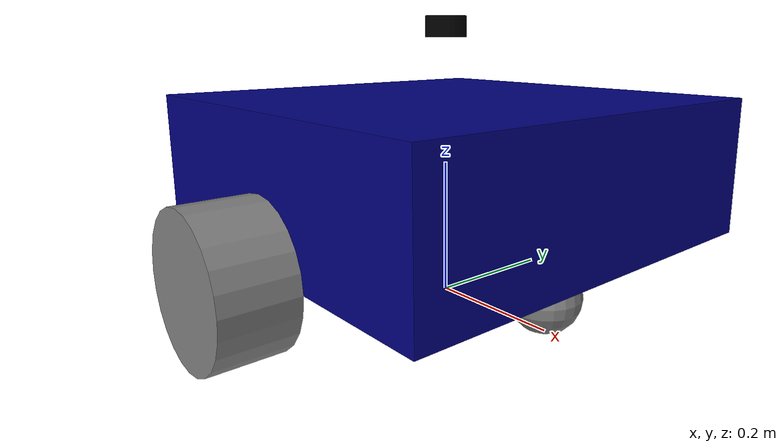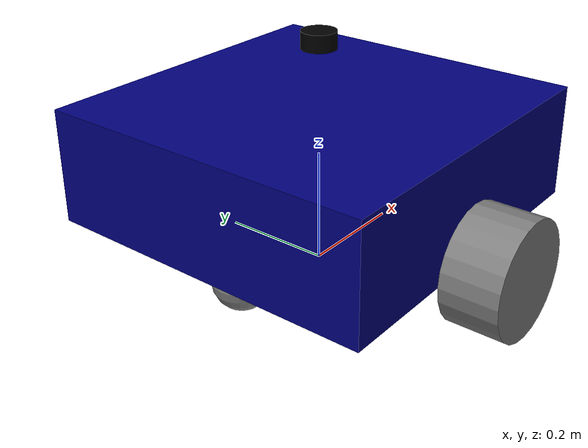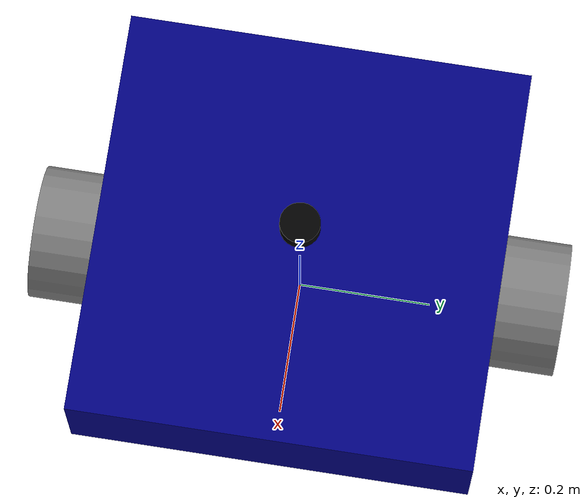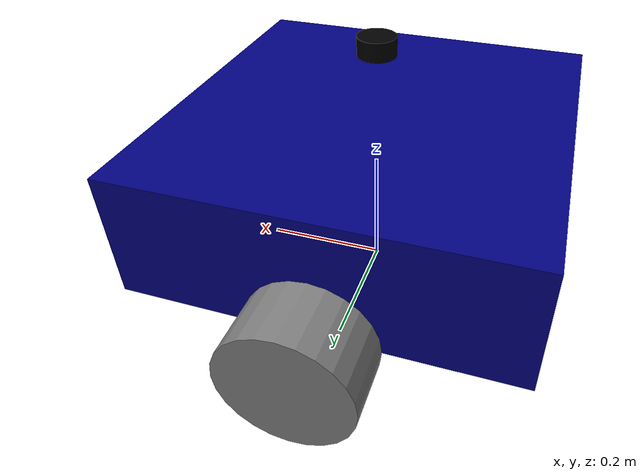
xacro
<?xml version="1.0"?>
<robot name="my_robot" xmlns:xacro="http://www.ros.org/wiki/xacro">

    <xacro:arg name="robot_name" default="robot"/>
    <xacro:arg name="tf_prefix" default="$(arg robot_name)"/>

    <xacro:property name="tf_prefix" value="$(arg tf_prefix)" />
    <xacro:property name="robot_name" value="$(arg robot_name)" />

    <xacro:include filename="common_properties.xacro" />
    <xacro:include filename="mobile_base.xacro" />
    <xacro:include filename="mobile_base_gazebo.xacro" />
    <xacro:include filename="lidar_sensor.xacro"/>
    <xacro:include filename="imu_sensor.xacro"/>

</robot>

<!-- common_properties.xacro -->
<robot xmlns:xacro="http://www.ros.org/wiki/xacro">

    <material name="blue">
        <color rgba="0 0 0.5 1" />
    </material>

    <material name="grey">
        <color rgba="0.5 0.5 0.5 1" />
    </material>

    <material name="black">
        <color rgba="0.0 0.0 0.0 1" />
    </material>

     <!-- Common robot properties -->
    <xacro:property name="prefix" value="${tf_prefix}/" />
    <xacro:property name="base_length" value="0.6" />
    <xacro:property name="base_width" value="0.6" />
    <xacro:property name="base_height" value="0.2" />
    <xacro:property name="wheel_radius" value="0.1" />
    <xacro:property name="wheel_length" value="0.1" />

    <!-- Sensor scaling factors -->
    <xacro:property name="sensor_scale" value="0.3" /> <!-- 1/8th of wheel radius -->

    <xacro:macro name="box_inertia" params="m x y z o_xyz o_rpy">
        <inertial>
            <mass value="${m}" />
            <origin xyz="${o_xyz}" rpy="${o_rpy}" />
            <inertia ixx="${(m/12) * (y*y + z*z)}" ixy="0" ixz="0"
                     iyy="${(m/12) * (x*x + z*z)}" iyz="0"
                     izz="${(m/12) * (x*x + y*y)}" />
        </inertial>
    </xacro:macro>

    <xacro:macro name="cylinder_inertia" params="m r l o_xyz o_rpy">
        <inertial>
            <mass value="${m}" />
            <origin xyz="${o_xyz}" rpy="${o_rpy}" />
            <inertia ixx="${(m/12) * (3*r*r + l*l)}" ixy="0" ixz="0"
                     iyy="${(m/12) * (3*r*r + l*l)}" iyz="0"
                     izz="${(m/2) * (r*r)}" />
        </inertial>
    </xacro:macro>

    <xacro:macro name="sphere_inertia" params="m r o_xyz o_rpy">
        <inertial>
            <mass value="${m}" />
            <origin xyz="${o_xyz}" rpy="${o_rpy}" />
            <inertia ixx="${(2/5) * m * r * r}" ixy="0" ixz="0"
                     iyy="${(2/5) * m * r * r}" iyz="0"
                     izz="${(2/5) * m * r * r}" />
        </inertial>
    </xacro:macro>

</robot>

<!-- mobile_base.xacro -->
<robot xmlns:xacro="http://www.ros.org/wiki/xacro">

    <link name="${prefix}base_footprint" />

    <link name="${prefix}base_link">
        <visual>
            <geometry>
                <box size="${base_length} ${base_width} ${base_height}" />
            </geometry>
            <origin xyz="0 0 ${base_height / 2.0}" rpy="0 0 0" />
            <material name="blue" />
        </visual>
        <collision>
            <geometry>
                <box size="${base_length} ${base_width} ${base_height}" />
            </geometry>
            <origin xyz="0 0 ${base_height / 2.0}" rpy="0 0 0" />
        </collision>
        <xacro:box_inertia m="100.0" x="${base_length}" y="${base_width}" z="${base_height}"
                          o_xyz="0 0 ${base_height / 2.0}" o_rpy="0 0 0" />
    </link>

    <xacro:macro name="wheel_link" params="prefix suffix">
        <link name="${prefix}${suffix}_wheel_link">
            <visual>
                <geometry>
                    <cylinder radius="${wheel_radius}" length="${wheel_length}" />
                </geometry>
                <origin xyz="0 0 0" rpy="${pi / 2.0} 0 0" />
                <material name="grey" />
            </visual>
            <collision>
                <geometry>
                    <sphere radius="${wheel_radius}" />
                </geometry>
                <surface>
      		<friction>
        		<ode>
          		<mu>10.0</mu>             <!-- Static friction -->
          		<mu2>8.0</mu2>           <!-- Dynamic friction -->
        		</ode>
      		</friction>
    		</surface>
                <origin xyz="0 0 0" rpy="0 0 0" />
            </collision>
            <xacro:cylinder_inertia m="20.0" r="${wheel_radius}" l="${wheel_length}"
                                   o_xyz="0 0 0" o_rpy="${pi / 2.0} 0 0" />
        </link>
    </xacro:macro>

    <xacro:wheel_link prefix="${prefix}" suffix="right" />
    <xacro:wheel_link prefix="${prefix}" suffix="left" />

    <link name="${prefix}caster_wheel_link">
        <visual>
            <geometry>
                <sphere radius="${wheel_radius / 2.0}" />
            </geometry>
            <origin xyz="0 0 0" rpy="0 0 0" />
            <material name="grey" />
        </visual>
        <collision>
            <geometry>
                <sphere radius="${wheel_radius / 2.0}" />
            </geometry>
            <origin xyz="0 0 0" rpy="0 0 0" />
        </collision>
        <xacro:sphere_inertia m="2.0" r="${wheel_radius / 2.0}"
                             o_xyz="0 0 0" o_rpy="0 0 0" />
    </link>

    <link name="${prefix}caster_wheel_link2">
        <visual>
            <geometry>
                <sphere radius="${wheel_radius / 2.0}" />
            </geometry>
            <origin xyz="0 0 0" rpy="0 0 0" />
            <material name="grey" />
        </visual>
        <collision>
            <geometry>
                <sphere radius="${wheel_radius / 2.0}" />
            </geometry>
            <origin xyz="0 0 0" rpy="0 0 0" />
        </collision>
        <xacro:sphere_inertia m="2.0" r="${wheel_radius / 2.0}"
                             o_xyz="0 0 0" o_rpy="0 0 0" />
    </link>

    <joint name="${prefix}base_joint" type="fixed">
        <parent link="${prefix}base_footprint" />
        <child link="${prefix}base_link" />
        <origin xyz="0 0 ${wheel_radius}" rpy="0 0 0"/>
    </joint>

    <joint name="${prefix}base_right_wheel_joint" type="continuous">
        <parent link="${prefix}base_link" />
        <child link="${prefix}right_wheel_link" />
        <origin xyz="0 ${-(base_width + wheel_length) / 2.0} 0" rpy="0 0 0" />
        <axis xyz="0 1 0" />
    </joint>

    <joint name="${prefix}base_left_wheel_joint" type="continuous">
        <parent link="${prefix}base_link" />
        <child link="${prefix}left_wheel_link" />
        <origin xyz="0 ${(base_width + wheel_length) / 2.0} 0" rpy="0 0 0" />
        <axis xyz="0 1 0" />
    </joint>

    <joint name="${prefix}base_caster_wheel_joint" type="fixed">
        <parent link="${prefix}base_link" />
        <child link="${prefix}caster_wheel_link" />
        <origin xyz="${base_length / 3.0} 0 ${-wheel_radius / 2.0}" rpy="0 0 0" />
    </joint>

    <joint name="${prefix}base_caster_wheel_joint2" type="fixed">
        <parent link="${prefix}base_link" />
        <child link="${prefix}caster_wheel_link2" />
        <origin xyz="${-base_length / 3.0} 0 ${-wheel_radius / 2.0}" rpy="0 0 0" />
    </joint>

</robot>

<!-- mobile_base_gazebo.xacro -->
<robot xmlns:xacro="http://www.ros.org/wiki/xacro">

  <xacro:property name="prefix" value="${tf_prefix}/" />

  <gazebo reference="${prefix}caster_wheel_link">
    <mu1 value="0.0"/>
    <mu2 value="0.0"/>
  </gazebo>

  <gazebo reference="${prefix}caster_wheel_link2">
    <mu1 value="0.0"/>
    <mu2 value="0.0"/>
  </gazebo>

  <gazebo>
    <plugin filename="gz-sim-diff-drive-system"
            name="gz::sim::systems::DiffDrive">
      <left_joint>${prefix}base_left_wheel_joint</left_joint>
      <right_joint>${prefix}base_right_wheel_joint</right_joint>
      <wheel_separation>1.0</wheel_separation>
      <wheel_radius>0.2</wheel_radius>
      <frame_id>${prefix}odom</frame_id>
      <child_frame_id>${prefix}base_footprint</child_frame_id>
    </plugin>
  </gazebo>

  <gazebo>
    <plugin filename="gz-sim-velocity-control-system"
            name="gz::sim::systems::VelocityControl">
    </plugin>
  </gazebo>

  <gazebo>
    <plugin filename="gz-sim-joint-state-publisher-system"
            name="gz::sim::systems::JointStatePublisher">
      <joint_name>${prefix}base_left_wheel_joint</joint_name>
      <joint_name>${prefix}base_right_wheel_joint</joint_name>
    </plugin>
  </gazebo>

  <gazebo reference="${prefix}lidar_link">
    <sensor name="${prefix}lidar_sensor" type="gpu_lidar">
      <pose>0 0 0 0 0 0</pose>
      <update_rate>10</update_rate>
      <always_on>1</always_on>
      <visualize>true</visualize>
      <topic>/${robot_name}/scan</topic>
      <gz_frame_id>${prefix}lidar_link</gz_frame_id>
      <lidar>
        <scan>
          <horizontal>
            <samples>1024</samples>
            <resolution>1</resolution>
            <min_angle>-3.14</min_angle>
            <max_angle>3.14</max_angle>
          </horizontal>
          <vertical>
            <samples>160</samples>
            <resolution>1</resolution>
            <min_angle>-0.26</min_angle> <!-- ~-15 deg -->
            <max_angle>0.26</max_angle>  <!-- ~+15 deg -->
          </vertical>
        </scan>
        <range>
          <min>0.12</min>
          <max>50.0</max>
          <resolution>0.01</resolution>
        </range>
        <noise>
          <type>gaussian</type>
          <mean>0.0</mean>
          <stddev>0.01</stddev>
        </noise>
      </lidar>
    </sensor>
  </gazebo>

  <gazebo reference="${prefix}imu_link">
    <sensor name="${prefix}imu_sensor" type="imu">
      <always_on>true</always_on>
      <update_rate>10</update_rate>
      <visualize>true</visualize>
      <topic>/${robot_name}/imu</topic>
      <imu>
        <noise>
          <type>gaussian</type>
          <!-- Noise characteristics for accelerometer -->
          <rate>
            <mean>0.0</mean>
            <stddev>0.0002</stddev>
            <bias_mean>0.0</bias_mean>
            <bias_stddev>0.0</bias_stddev>
          </rate>
          <!-- Noise characteristics for gyroscope -->
          <accel>
            <mean>0.0</mean>
            <stddev>0.017</stddev>
            <bias_mean>0.0</bias_mean>
            <bias_stddev>0.0</bias_stddev>
          </accel>
        </noise>
      </imu>
    </sensor>
  </gazebo>

</robot>

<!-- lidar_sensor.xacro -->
<robot xmlns:xacro="http://ros.org/wiki/xacro">

  <xacro:property name="lidar_link_name" value="${prefix}lidar_link"/>
  <xacro:property name="lidar_joint_name" value="${prefix}lidar_joint"/>
  <xacro:property name="lidar_frame" value="${prefix}lidar_frame"/>
  <xacro:property name="lidar_mass" value="2.0"/> <!-- Increased mass -->
  <xacro:property name="lidar_xyz" value="0 0 ${base_height*0.5}"/> <!-- 1/2 of base height -->

  <!-- Scaled dimensions (1/8th of wheel radius) -->
  <xacro:property name="lidar_radius" value="${wheel_radius * sensor_scale}"/>
  <xacro:property name="lidar_length" value="${wheel_radius * sensor_scale}"/>

  <link name="${lidar_link_name}">
    <visual>
      <geometry>
        <cylinder length="${lidar_length}" radius="${lidar_radius}"/>
      </geometry>
      <origin xyz="0 0 ${base_height}" rpy="0 0 0"/>
      <material name="black"/>
    </visual>
    <collision>
      <geometry>
        <cylinder length="${lidar_length}" radius="${lidar_radius}"/>
      </geometry>
      <origin xyz="0 0 ${base_height}" rpy="0 0 0"/>
    </collision>
    <inertial>
      <mass value="${lidar_mass}"/>
      <inertia ixx="${lidar_mass*(3*lidar_radius*lidar_radius + lidar_length*lidar_length)/12}"
               ixy="0.0"
               ixz="0.0"
               iyy="${lidar_mass*(3*lidar_radius*lidar_radius + lidar_length*lidar_length)/12}"
               iyz="0.0"
               izz="${lidar_mass*(lidar_radius*lidar_radius)/2}"/>
    </inertial>
  </link>

  <joint name="${lidar_joint_name}" type="fixed">
    <parent link="${prefix}base_link"/>
    <child link="${lidar_link_name}"/>
    <origin xyz="${lidar_xyz}" rpy="0 0 0"/>
  </joint>
</robot>

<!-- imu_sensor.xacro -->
<robot xmlns:xacro="http://www.ros.org/wiki/xacro">

  <xacro:property name="imu_link_name" value="${prefix}imu_link"/>
  <xacro:property name="imu_joint_name" value="${prefix}imu_joint"/>
  <xacro:property name="imu_frame" value="${prefix}imu_frame"/>
  <xacro:property name="imu_xyz" value="0 0 ${base_height*0.25}"/> <!-- 1/4 of base height -->

  <!-- Scaled dimensions (1/8th of wheel radius) -->
  <xacro:property name="imu_size" value="${wheel_radius * sensor_scale}"/>
  <xacro:property name="imu_height" value="${imu_size * 0.4}"/>
  <xacro:property name="imu_mass" value="0.2"/> <!-- Increased mass -->

  <link name="${imu_link_name}">
    <visual>
      <geometry>
        <box size="${imu_size} ${imu_size} ${imu_height}"/>
      </geometry>
      <origin xyz="0 0 0" rpy="0 0 0"/>
      <material name="black"/>
    </visual>
    <collision>
      <geometry>
        <box size="${imu_size} ${imu_size} ${imu_height}"/>
      </geometry>
      <origin xyz="0 0 0" rpy="0 0 0"/>
    </collision>
    <inertial>
      <mass value="${imu_mass}"/>
      <inertia ixx="${imu_mass*(imu_size*imu_size + imu_height*imu_height)/12}"
               ixy="0.0"
               ixz="0.0"
               iyy="${imu_mass*(imu_size*imu_size + imu_height*imu_height)/12}"
               iyz="0.0"
               izz="${imu_mass*(imu_size*imu_size + imu_size*imu_size)/12}"/>
    </inertial>
  </link>

  <joint name="${imu_joint_name}" type="fixed">
    <parent link="${prefix}base_link"/>
    <child link="${imu_link_name}"/>
    <origin xyz="${imu_xyz}" rpy="0 0 0"/>
  </joint>
</robot>
